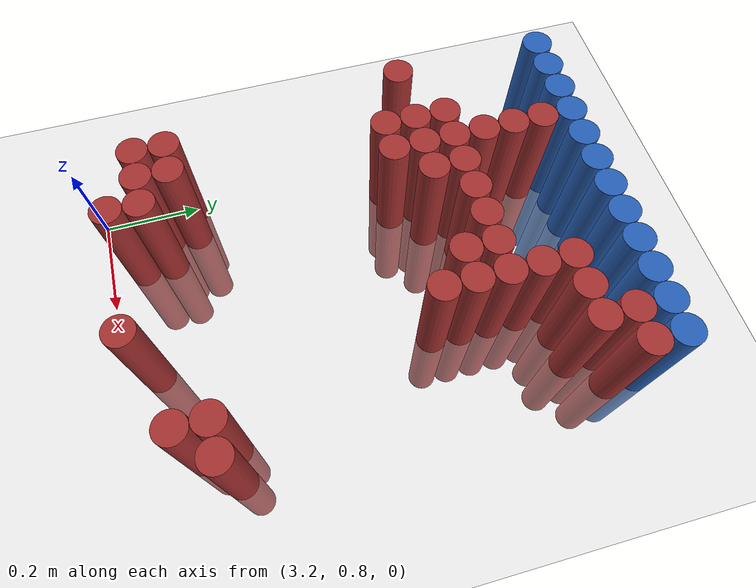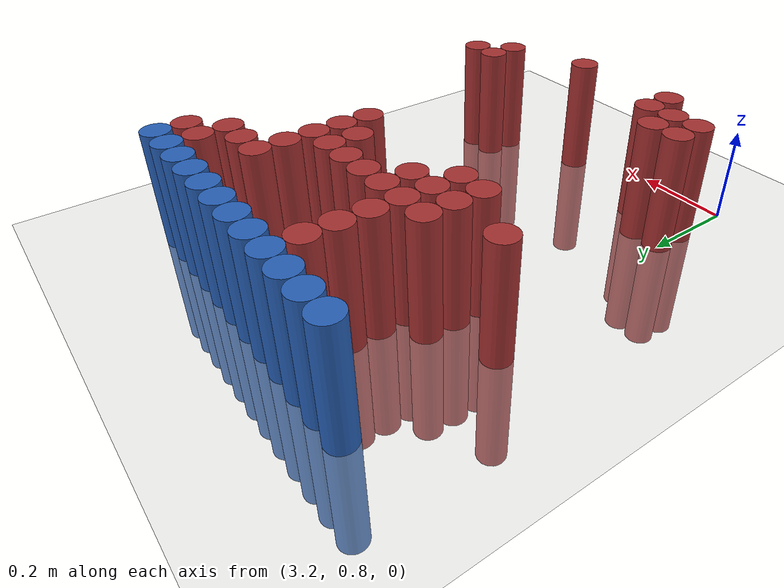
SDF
<sdf version="1.6">
 <world name="default">
  <model name="ground_plane">
   <static>1</static>
   <link name="link">
    <collision name="collision">
     <geometry><plane><normal>0 0 1</normal><size>100 100</size></plane></geometry>
     <surface><friction><ode><mu>100</mu><mu2>50</mu2></ode></friction></surface>
    </collision>
    <visual name="visual">
     <cast_shadows>0</cast_shadows>
     <geometry><plane><normal>0 0 1</normal><size>100 100</size></plane></geometry>
     <material>
      <script><uri>file://media/materials/scripts/gazebo.material</uri><name>Gazebo/Grey</name></script>
     </material>
    </visual>
   </link>
  </model>
  <model name="unit_cylinder_113">
   <static>1</static>
   <pose>3.150000 1.770000 0.000000 0.000000 0.000000 0.000000</pose>
   <link name="link">
    <inertial>
     <mass>1</mass>
     <inertia><ixx>0.145833</ixx><ixy>0</ixy><ixz>0</ixz><iyy>0.145833</iyy><iyz>0</iyz><izz>0.125</izz></inertia>
    </inertial>
    <collision name="collision">
     <geometry><cylinder><radius>0.030000</radius><length>0.5</length></cylinder></geometry>
    </collision>
    <visual name="visual">
     <geometry><cylinder><radius>0.030000</radius><length>0.5</length></cylinder></geometry>
     <material>
      <ambient>0.152000 0.379000 0.720000 1</ambient>
      <diffuse>0.152000 0.379000 0.720000 1</diffuse>
     </material>
     <material>
      <script><name>Gazebo/Grey</name><uri>file://media/materials/scripts/gazebo.material</uri></script>
     </material>
    </visual>
   </link>
  </model>
  <model name="unit_cylinder_114">
   <static>1</static>
   <pose>3.210000 1.770000 0.000000 0.000000 0.000000 0.000000</pose>
   <link name="link">
    <inertial>
     <mass>1</mass>
     <inertia><ixx>0.145833</ixx><ixy>0</ixy><ixz>0</ixz><iyy>0.145833</iyy><iyz>0</iyz><izz>0.125</izz></inertia>
    </inertial>
    <collision name="collision">
     <geometry><cylinder><radius>0.030000</radius><length>0.5</length></cylinder></geometry>
    </collision>
    <visual name="visual">
     <geometry><cylinder><radius>0.030000</radius><length>0.5</length></cylinder></geometry>
     <material>
      <ambient>0.152000 0.379000 0.720000 1</ambient>
      <diffuse>0.152000 0.379000 0.720000 1</diffuse>
     </material>
     <material>
      <script><name>Gazebo/Grey</name><uri>file://media/materials/scripts/gazebo.material</uri></script>
     </material>
    </visual>
   </link>
  </model>
  <model name="unit_cylinder_115">
   <static>1</static>
   <pose>3.270000 1.770000 0.000000 0.000000 0.000000 0.000000</pose>
   <link name="link">
    <inertial>
     <mass>1</mass>
     <inertia><ixx>0.145833</ixx><ixy>0</ixy><ixz>0</ixz><iyy>0.145833</iyy><iyz>0</iyz><izz>0.125</izz></inertia>
    </inertial>
    <collision name="collision">
     <geometry><cylinder><radius>0.030000</radius><length>0.5</length></cylinder></geometry>
    </collision>
    <visual name="visual">
     <geometry><cylinder><radius>0.030000</radius><length>0.5</length></cylinder></geometry>
     <material>
      <ambient>0.152000 0.379000 0.720000 1</ambient>
      <diffuse>0.152000 0.379000 0.720000 1</diffuse>
     </material>
     <material>
      <script><name>Gazebo/Grey</name><uri>file://media/materials/scripts/gazebo.material</uri></script>
     </material>
    </visual>
   </link>
  </model>
  <model name="unit_cylinder_116">
   <static>1</static>
   <pose>3.330000 1.770000 0.000000 0.000000 0.000000 0.000000</pose>
   <link name="link">
    <inertial>
     <mass>1</mass>
     <inertia><ixx>0.145833</ixx><ixy>0</ixy><ixz>0</ixz><iyy>0.145833</iyy><iyz>0</iyz><izz>0.125</izz></inertia>
    </inertial>
    <collision name="collision">
     <geometry><cylinder><radius>0.030000</radius><length>0.5</length></cylinder></geometry>
    </collision>
    <visual name="visual">
     <geometry><cylinder><radius>0.030000</radius><length>0.5</length></cylinder></geometry>
     <material>
      <ambient>0.152000 0.379000 0.720000 1</ambient>
      <diffuse>0.152000 0.379000 0.720000 1</diffuse>
     </material>
     <material>
      <script><name>Gazebo/Grey</name><uri>file://media/materials/scripts/gazebo.material</uri></script>
     </material>
    </visual>
   </link>
  </model>
  <model name="unit_cylinder_117">
   <static>1</static>
   <pose>3.390000 1.770000 0.000000 0.000000 0.000000 0.000000</pose>
   <link name="link">
    <inertial>
     <mass>1</mass>
     <inertia><ixx>0.145833</ixx><ixy>0</ixy><ixz>0</ixz><iyy>0.145833</iyy><iyz>0</iyz><izz>0.125</izz></inertia>
    </inertial>
    <collision name="collision">
     <geometry><cylinder><radius>0.030000</radius><length>0.5</length></cylinder></geometry>
    </collision>
    <visual name="visual">
     <geometry><cylinder><radius>0.030000</radius><length>0.5</length></cylinder></geometry>
     <material>
      <ambient>0.152000 0.379000 0.720000 1</ambient>
      <diffuse>0.152000 0.379000 0.720000 1</diffuse>
     </material>
     <material>
      <script><name>Gazebo/Grey</name><uri>file://media/materials/scripts/gazebo.material</uri></script>
     </material>
    </visual>
   </link>
  </model>
  <model name="unit_cylinder_118">
   <static>1</static>
   <pose>3.450000 1.770000 0.000000 0.000000 0.000000 0.000000</pose>
   <link name="link">
    <inertial>
     <mass>1</mass>
     <inertia><ixx>0.145833</ixx><ixy>0</ixy><ixz>0</ixz><iyy>0.145833</iyy><iyz>0</iyz><izz>0.125</izz></inertia>
    </inertial>
    <collision name="collision">
     <geometry><cylinder><radius>0.030000</radius><length>0.5</length></cylinder></geometry>
    </collision>
    <visual name="visual">
     <geometry><cylinder><radius>0.030000</radius><length>0.5</length></cylinder></geometry>
     <material>
      <ambient>0.152000 0.379000 0.720000 1</ambient>
      <diffuse>0.152000 0.379000 0.720000 1</diffuse>
     </material>
     <material>
      <script><name>Gazebo/Grey</name><uri>file://media/materials/scripts/gazebo.material</uri></script>
     </material>
    </visual>
   </link>
  </model>
  <model name="unit_cylinder_119">
   <static>1</static>
   <pose>3.510000 1.770000 0.000000 0.000000 0.000000 0.000000</pose>
   <link name="link">
    <inertial>
     <mass>1</mass>
     <inertia><ixx>0.145833</ixx><ixy>0</ixy><ixz>0</ixz><iyy>0.145833</iyy><iyz>0</iyz><izz>0.125</izz></inertia>
    </inertial>
    <collision name="collision">
     <geometry><cylinder><radius>0.030000</radius><length>0.5</length></cylinder></geometry>
    </collision>
    <visual name="visual">
     <geometry><cylinder><radius>0.030000</radius><length>0.5</length></cylinder></geometry>
     <material>
      <ambient>0.152000 0.379000 0.720000 1</ambient>
      <diffuse>0.152000 0.379000 0.720000 1</diffuse>
     </material>
     <material>
      <script><name>Gazebo/Grey</name><uri>file://media/materials/scripts/gazebo.material</uri></script>
     </material>
    </visual>
   </link>
  </model>
  <model name="unit_cylinder_120">
   <static>1</static>
   <pose>3.570000 1.770000 0.000000 0.000000 0.000000 0.000000</pose>
   <link name="link">
    <inertial>
     <mass>1</mass>
     <inertia><ixx>0.145833</ixx><ixy>0</ixy><ixz>0</ixz><iyy>0.145833</iyy><iyz>0</iyz><izz>0.125</izz></inertia>
    </inertial>
    <collision name="collision">
     <geometry><cylinder><radius>0.030000</radius><length>0.5</length></cylinder></geometry>
    </collision>
    <visual name="visual">
     <geometry><cylinder><radius>0.030000</radius><length>0.5</length></cylinder></geometry>
     <material>
      <ambient>0.152000 0.379000 0.720000 1</ambient>
      <diffuse>0.152000 0.379000 0.720000 1</diffuse>
     </material>
     <material>
      <script><name>Gazebo/Grey</name><uri>file://media/materials/scripts/gazebo.material</uri></script>
     </material>
    </visual>
   </link>
  </model>
  <model name="unit_cylinder_121">
   <static>1</static>
   <pose>3.630000 1.770000 0.000000 0.000000 0.000000 0.000000</pose>
   <link name="link">
    <inertial>
     <mass>1</mass>
     <inertia><ixx>0.145833</ixx><ixy>0</ixy><ixz>0</ixz><iyy>0.145833</iyy><iyz>0</iyz><izz>0.125</izz></inertia>
    </inertial>
    <collision name="collision">
     <geometry><cylinder><radius>0.030000</radius><length>0.5</length></cylinder></geometry>
    </collision>
    <visual name="visual">
     <geometry><cylinder><radius>0.030000</radius><length>0.5</length></cylinder></geometry>
     <material>
      <ambient>0.152000 0.379000 0.720000 1</ambient>
      <diffuse>0.152000 0.379000 0.720000 1</diffuse>
     </material>
     <material>
      <script><name>Gazebo/Grey</name><uri>file://media/materials/scripts/gazebo.material</uri></script>
     </material>
    </visual>
   </link>
  </model>
  <model name="unit_cylinder_122">
   <static>1</static>
   <pose>3.690000 1.770000 0.000000 0.000000 0.000000 0.000000</pose>
   <link name="link">
    <inertial>
     <mass>1</mass>
     <inertia><ixx>0.145833</ixx><ixy>0</ixy><ixz>0</ixz><iyy>0.145833</iyy><iyz>0</iyz><izz>0.125</izz></inertia>
    </inertial>
    <collision name="collision">
     <geometry><cylinder><radius>0.030000</radius><length>0.5</length></cylinder></geometry>
    </collision>
    <visual name="visual">
     <geometry><cylinder><radius>0.030000</radius><length>0.5</length></cylinder></geometry>
     <material>
      <ambient>0.152000 0.379000 0.720000 1</ambient>
      <diffuse>0.152000 0.379000 0.720000 1</diffuse>
     </material>
     <material>
      <script><name>Gazebo/Grey</name><uri>file://media/materials/scripts/gazebo.material</uri></script>
     </material>
    </visual>
   </link>
  </model>
  <model name="unit_cylinder_123">
   <static>1</static>
   <pose>3.750000 1.770000 0.000000 0.000000 0.000000 0.000000</pose>
   <link name="link">
    <inertial>
     <mass>1</mass>
     <inertia><ixx>0.145833</ixx><ixy>0</ixy><ixz>0</ixz><iyy>0.145833</iyy><iyz>0</iyz><izz>0.125</izz></inertia>
    </inertial>
    <collision name="collision">
     <geometry><cylinder><radius>0.030000</radius><length>0.5</length></cylinder></geometry>
    </collision>
    <visual name="visual">
     <geometry><cylinder><radius>0.030000</radius><length>0.5</length></cylinder></geometry>
     <material>
      <ambient>0.152000 0.379000 0.720000 1</ambient>
      <diffuse>0.152000 0.379000 0.720000 1</diffuse>
     </material>
     <material>
      <script><name>Gazebo/Grey</name><uri>file://media/materials/scripts/gazebo.material</uri></script>
     </material>
    </visual>
   </link>
  </model>
  <model name="unit_cylinder_124">
   <static>1</static>
   <pose>3.810000 1.770000 0.000000 0.000000 0.000000 0.000000</pose>
   <link name="link">
    <inertial>
     <mass>1</mass>
     <inertia><ixx>0.145833</ixx><ixy>0</ixy><ixz>0</ixz><iyy>0.145833</iyy><iyz>0</iyz><izz>0.125</izz></inertia>
    </inertial>
    <collision name="collision">
     <geometry><cylinder><radius>0.030000</radius><length>0.5</length></cylinder></geometry>
    </collision>
    <visual name="visual">
     <geometry><cylinder><radius>0.030000</radius><length>0.5</length></cylinder></geometry>
     <material>
      <ambient>0.152000 0.379000 0.720000 1</ambient>
      <diffuse>0.152000 0.379000 0.720000 1</diffuse>
     </material>
     <material>
      <script><name>Gazebo/Grey</name><uri>file://media/materials/scripts/gazebo.material</uri></script>
     </material>
    </visual>
   </link>
  </model>
  <model name="unit_cylinder_133">
   <static>1</static>
   <pose>3.330000 1.710000 0.000000 0.000000 0.000000 0.000000</pose>
   <link name="link">
    <inertial>
     <mass>1</mass>
     <inertia><ixx>0.145833</ixx><ixy>0</ixy><ixz>0</ixz><iyy>0.145833</iyy><iyz>0</iyz><izz>0.125</izz></inertia>
    </inertial>
    <collision name="collision">
     <geometry><cylinder><radius>0.030000</radius><length>0.5</length></cylinder></geometry>
    </collision>
    <visual name="visual">
     <geometry><cylinder><radius>0.030000</radius><length>0.5</length></cylinder></geometry>
     <material>
      <ambient>0.648000 0.192000 0.192000 1</ambient>
      <diffuse>0.648000 0.192000 0.192000 1</diffuse>
     </material>
     <material>
      <script><name>Gazebo/Grey</name><uri>file://media/materials/scripts/gazebo.material</uri></script>
     </material>
    </visual>
   </link>
  </model>
  <model name="unit_cylinder_134">
   <static>1</static>
   <pose>3.750000 1.710000 0.000000 0.000000 0.000000 0.000000</pose>
   <link name="link">
    <inertial>
     <mass>1</mass>
     <inertia><ixx>0.145833</ixx><ixy>0</ixy><ixz>0</ixz><iyy>0.145833</iyy><iyz>0</iyz><izz>0.125</izz></inertia>
    </inertial>
    <collision name="collision">
     <geometry><cylinder><radius>0.030000</radius><length>0.5</length></cylinder></geometry>
    </collision>
    <visual name="visual">
     <geometry><cylinder><radius>0.030000</radius><length>0.5</length></cylinder></geometry>
     <material>
      <ambient>0.648000 0.192000 0.192000 1</ambient>
      <diffuse>0.648000 0.192000 0.192000 1</diffuse>
     </material>
     <material>
      <script><name>Gazebo/Grey</name><uri>file://media/materials/scripts/gazebo.material</uri></script>
     </material>
    </visual>
   </link>
  </model>
  <model name="unit_cylinder_135">
   <static>1</static>
   <pose>3.810000 1.710000 0.000000 0.000000 0.000000 0.000000</pose>
   <link name="link">
    <inertial>
     <mass>1</mass>
     <inertia><ixx>0.145833</ixx><ixy>0</ixy><ixz>0</ixz><iyy>0.145833</iyy><iyz>0</iyz><izz>0.125</izz></inertia>
    </inertial>
    <collision name="collision">
     <geometry><cylinder><radius>0.030000</radius><length>0.5</length></cylinder></geometry>
    </collision>
    <visual name="visual">
     <geometry><cylinder><radius>0.030000</radius><length>0.5</length></cylinder></geometry>
     <material>
      <ambient>0.648000 0.192000 0.192000 1</ambient>
      <diffuse>0.648000 0.192000 0.192000 1</diffuse>
     </material>
     <material>
      <script><name>Gazebo/Grey</name><uri>file://media/materials/scripts/gazebo.material</uri></script>
     </material>
    </visual>
   </link>
  </model>
  <model name="unit_cylinder_141">
   <static>1</static>
   <pose>3.330000 1.650000 0.000000 0.000000 0.000000 0.000000</pose>
   <link name="link">
    <inertial>
     <mass>1</mass>
     <inertia><ixx>0.145833</ixx><ixy>0</ixy><ixz>0</ixz><iyy>0.145833</iyy><iyz>0</iyz><izz>0.125</izz></inertia>
    </inertial>
    <collision name="collision">
     <geometry><cylinder><radius>0.030000</radius><length>0.5</length></cylinder></geometry>
    </collision>
    <visual name="visual">
     <geometry><cylinder><radius>0.030000</radius><length>0.5</length></cylinder></geometry>
     <material>
      <ambient>0.648000 0.192000 0.192000 1</ambient>
      <diffuse>0.648000 0.192000 0.192000 1</diffuse>
     </material>
     <material>
      <script><name>Gazebo/Grey</name><uri>file://media/materials/scripts/gazebo.material</uri></script>
     </material>
    </visual>
   </link>
  </model>
  <model name="unit_cylinder_142">
   <static>1</static>
   <pose>3.630000 1.650000 0.000000 0.000000 0.000000 0.000000</pose>
   <link name="link">
    <inertial>
     <mass>1</mass>
     <inertia><ixx>0.145833</ixx><ixy>0</ixy><ixz>0</ixz><iyy>0.145833</iyy><iyz>0</iyz><izz>0.125</izz></inertia>
    </inertial>
    <collision name="collision">
     <geometry><cylinder><radius>0.030000</radius><length>0.5</length></cylinder></geometry>
    </collision>
    <visual name="visual">
     <geometry><cylinder><radius>0.030000</radius><length>0.5</length></cylinder></geometry>
     <material>
      <ambient>0.648000 0.192000 0.192000 1</ambient>
      <diffuse>0.648000 0.192000 0.192000 1</diffuse>
     </material>
     <material>
      <script><name>Gazebo/Grey</name><uri>file://media/materials/scripts/gazebo.material</uri></script>
     </material>
    </visual>
   </link>
  </model>
  <model name="unit_cylinder_143">
   <static>1</static>
   <pose>3.690000 1.650000 0.000000 0.000000 0.000000 0.000000</pose>
   <link name="link">
    <inertial>
     <mass>1</mass>
     <inertia><ixx>0.145833</ixx><ixy>0</ixy><ixz>0</ixz><iyy>0.145833</iyy><iyz>0</iyz><izz>0.125</izz></inertia>
    </inertial>
    <collision name="collision">
     <geometry><cylinder><radius>0.030000</radius><length>0.5</length></cylinder></geometry>
    </collision>
    <visual name="visual">
     <geometry><cylinder><radius>0.030000</radius><length>0.5</length></cylinder></geometry>
     <material>
      <ambient>0.648000 0.192000 0.192000 1</ambient>
      <diffuse>0.648000 0.192000 0.192000 1</diffuse>
     </material>
     <material>
      <script><name>Gazebo/Grey</name><uri>file://media/materials/scripts/gazebo.material</uri></script>
     </material>
    </visual>
   </link>
  </model>
  <model name="unit_cylinder_144">
   <static>1</static>
   <pose>3.750000 1.650000 0.000000 0.000000 0.000000 0.000000</pose>
   <link name="link">
    <inertial>
     <mass>1</mass>
     <inertia><ixx>0.145833</ixx><ixy>0</ixy><ixz>0</ixz><iyy>0.145833</iyy><iyz>0</iyz><izz>0.125</izz></inertia>
    </inertial>
    <collision name="collision">
     <geometry><cylinder><radius>0.030000</radius><length>0.5</length></cylinder></geometry>
    </collision>
    <visual name="visual">
     <geometry><cylinder><radius>0.030000</radius><length>0.5</length></cylinder></geometry>
     <material>
      <ambient>0.648000 0.192000 0.192000 1</ambient>
      <diffuse>0.648000 0.192000 0.192000 1</diffuse>
     </material>
     <material>
      <script><name>Gazebo/Grey</name><uri>file://media/materials/scripts/gazebo.material</uri></script>
     </material>
    </visual>
   </link>
  </model>
  <model name="unit_cylinder_148">
   <static>1</static>
   <pose>3.330000 1.590000 0.000000 0.000000 0.000000 0.000000</pose>
   <link name="link">
    <inertial>
     <mass>1</mass>
     <inertia><ixx>0.145833</ixx><ixy>0</ixy><ixz>0</ixz><iyy>0.145833</iyy><iyz>0</iyz><izz>0.125</izz></inertia>
    </inertial>
    <collision name="collision">
     <geometry><cylinder><radius>0.030000</radius><length>0.5</length></cylinder></geometry>
    </collision>
    <visual name="visual">
     <geometry><cylinder><radius>0.030000</radius><length>0.5</length></cylinder></geometry>
     <material>
      <ambient>0.648000 0.192000 0.192000 1</ambient>
      <diffuse>0.648000 0.192000 0.192000 1</diffuse>
     </material>
     <material>
      <script><name>Gazebo/Grey</name><uri>file://media/materials/scripts/gazebo.material</uri></script>
     </material>
    </visual>
   </link>
  </model>
  <model name="unit_cylinder_149">
   <static>1</static>
   <pose>3.630000 1.590000 0.000000 0.000000 0.000000 0.000000</pose>
   <link name="link">
    <inertial>
     <mass>1</mass>
     <inertia><ixx>0.145833</ixx><ixy>0</ixy><ixz>0</ixz><iyy>0.145833</iyy><iyz>0</iyz><izz>0.125</izz></inertia>
    </inertial>
    <collision name="collision">
     <geometry><cylinder><radius>0.030000</radius><length>0.5</length></cylinder></geometry>
    </collision>
    <visual name="visual">
     <geometry><cylinder><radius>0.030000</radius><length>0.5</length></cylinder></geometry>
     <material>
      <ambient>0.648000 0.192000 0.192000 1</ambient>
      <diffuse>0.648000 0.192000 0.192000 1</diffuse>
     </material>
     <material>
      <script><name>Gazebo/Grey</name><uri>file://media/materials/scripts/gazebo.material</uri></script>
     </material>
    </visual>
   </link>
  </model>
  <model name="unit_cylinder_155">
   <static>1</static>
   <pose>3.270000 1.530000 0.000000 0.000000 0.000000 0.000000</pose>
   <link name="link">
    <inertial>
     <mass>1</mass>
     <inertia><ixx>0.145833</ixx><ixy>0</ixy><ixz>0</ixz><iyy>0.145833</iyy><iyz>0</iyz><izz>0.125</izz></inertia>
    </inertial>
    <collision name="collision">
     <geometry><cylinder><radius>0.030000</radius><length>0.5</length></cylinder></geometry>
    </collision>
    <visual name="visual">
     <geometry><cylinder><radius>0.030000</radius><length>0.5</length></cylinder></geometry>
     <material>
      <ambient>0.648000 0.192000 0.192000 1</ambient>
      <diffuse>0.648000 0.192000 0.192000 1</diffuse>
     </material>
     <material>
      <script><name>Gazebo/Grey</name><uri>file://media/materials/scripts/gazebo.material</uri></script>
     </material>
    </visual>
   </link>
  </model>
  <model name="unit_cylinder_156">
   <static>1</static>
   <pose>3.330000 1.530000 0.000000 0.000000 0.000000 0.000000</pose>
   <link name="link">
    <inertial>
     <mass>1</mass>
     <inertia><ixx>0.145833</ixx><ixy>0</ixy><ixz>0</ixz><iyy>0.145833</iyy><iyz>0</iyz><izz>0.125</izz></inertia>
    </inertial>
    <collision name="collision">
     <geometry><cylinder><radius>0.030000</radius><length>0.5</length></cylinder></geometry>
    </collision>
    <visual name="visual">
     <geometry><cylinder><radius>0.030000</radius><length>0.5</length></cylinder></geometry>
     <material>
      <ambient>0.648000 0.192000 0.192000 1</ambient>
      <diffuse>0.648000 0.192000 0.192000 1</diffuse>
     </material>
     <material>
      <script><name>Gazebo/Grey</name><uri>file://media/materials/scripts/gazebo.material</uri></script>
     </material>
    </visual>
   </link>
  </model>
  <model name="unit_cylinder_157">
   <static>1</static>
   <pose>3.390000 1.530000 0.000000 0.000000 0.000000 0.000000</pose>
   <link name="link">
    <inertial>
     <mass>1</mass>
     <inertia><ixx>0.145833</ixx><ixy>0</ixy><ixz>0</ixz><iyy>0.145833</iyy><iyz>0</iyz><izz>0.125</izz></inertia>
    </inertial>
    <collision name="collision">
     <geometry><cylinder><radius>0.030000</radius><length>0.5</length></cylinder></geometry>
    </collision>
    <visual name="visual">
     <geometry><cylinder><radius>0.030000</radius><length>0.5</length></cylinder></geometry>
     <material>
      <ambient>0.648000 0.192000 0.192000 1</ambient>
      <diffuse>0.648000 0.192000 0.192000 1</diffuse>
     </material>
     <material>
      <script><name>Gazebo/Grey</name><uri>file://media/materials/scripts/gazebo.material</uri></script>
     </material>
    </visual>
   </link>
  </model>
  <model name="unit_cylinder_158">
   <static>1</static>
   <pose>3.450000 1.530000 0.000000 0.000000 0.000000 0.000000</pose>
   <link name="link">
    <inertial>
     <mass>1</mass>
     <inertia><ixx>0.145833</ixx><ixy>0</ixy><ixz>0</ixz><iyy>0.145833</iyy><iyz>0</iyz><izz>0.125</izz></inertia>
    </inertial>
    <collision name="collision">
     <geometry><cylinder><radius>0.030000</radius><length>0.5</length></cylinder></geometry>
    </collision>
    <visual name="visual">
     <geometry><cylinder><radius>0.030000</radius><length>0.5</length></cylinder></geometry>
     <material>
      <ambient>0.648000 0.192000 0.192000 1</ambient>
      <diffuse>0.648000 0.192000 0.192000 1</diffuse>
     </material>
     <material>
      <script><name>Gazebo/Grey</name><uri>file://media/materials/scripts/gazebo.material</uri></script>
     </material>
    </visual>
   </link>
  </model>
  <model name="unit_cylinder_159">
   <static>1</static>
   <pose>3.510000 1.530000 0.000000 0.000000 0.000000 0.000000</pose>
   <link name="link">
    <inertial>
     <mass>1</mass>
     <inertia><ixx>0.145833</ixx><ixy>0</ixy><ixz>0</ixz><iyy>0.145833</iyy><iyz>0</iyz><izz>0.125</izz></inertia>
    </inertial>
    <collision name="collision">
     <geometry><cylinder><radius>0.030000</radius><length>0.5</length></cylinder></geometry>
    </collision>
    <visual name="visual">
     <geometry><cylinder><radius>0.030000</radius><length>0.5</length></cylinder></geometry>
     <material>
      <ambient>0.648000 0.192000 0.192000 1</ambient>
      <diffuse>0.648000 0.192000 0.192000 1</diffuse>
     </material>
     <material>
      <script><name>Gazebo/Grey</name><uri>file://media/materials/scripts/gazebo.material</uri></script>
     </material>
    </visual>
   </link>
  </model>
  <model name="unit_cylinder_160">
   <static>1</static>
   <pose>3.570000 1.530000 0.000000 0.000000 0.000000 0.000000</pose>
   <link name="link">
    <inertial>
     <mass>1</mass>
     <inertia><ixx>0.145833</ixx><ixy>0</ixy><ixz>0</ixz><iyy>0.145833</iyy><iyz>0</iyz><izz>0.125</izz></inertia>
    </inertial>
    <collision name="collision">
     <geometry><cylinder><radius>0.030000</radius><length>0.5</length></cylinder></geometry>
    </collision>
    <visual name="visual">
     <geometry><cylinder><radius>0.030000</radius><length>0.5</length></cylinder></geometry>
     <material>
      <ambient>0.648000 0.192000 0.192000 1</ambient>
      <diffuse>0.648000 0.192000 0.192000 1</diffuse>
     </material>
     <material>
      <script><name>Gazebo/Grey</name><uri>file://media/materials/scripts/gazebo.material</uri></script>
     </material>
    </visual>
   </link>
  </model>
  <model name="unit_cylinder_161">
   <static>1</static>
   <pose>3.630000 1.530000 0.000000 0.000000 0.000000 0.000000</pose>
   <link name="link">
    <inertial>
     <mass>1</mass>
     <inertia><ixx>0.145833</ixx><ixy>0</ixy><ixz>0</ixz><iyy>0.145833</iyy><iyz>0</iyz><izz>0.125</izz></inertia>
    </inertial>
    <collision name="collision">
     <geometry><cylinder><radius>0.030000</radius><length>0.5</length></cylinder></geometry>
    </collision>
    <visual name="visual">
     <geometry><cylinder><radius>0.030000</radius><length>0.5</length></cylinder></geometry>
     <material>
      <ambient>0.648000 0.192000 0.192000 1</ambient>
      <diffuse>0.648000 0.192000 0.192000 1</diffuse>
     </material>
     <material>
      <script><name>Gazebo/Grey</name><uri>file://media/materials/scripts/gazebo.material</uri></script>
     </material>
    </visual>
   </link>
  </model>
  <model name="unit_cylinder_169">
   <static>1</static>
   <pose>3.150000 1.470000 0.000000 0.000000 0.000000 0.000000</pose>
   <link name="link">
    <inertial>
     <mass>1</mass>
     <inertia><ixx>0.145833</ixx><ixy>0</ixy><ixz>0</ixz><iyy>0.145833</iyy><iyz>0</iyz><izz>0.125</izz></inertia>
    </inertial>
    <collision name="collision">
     <geometry><cylinder><radius>0.030000</radius><length>0.5</length></cylinder></geometry>
    </collision>
    <visual name="visual">
     <geometry><cylinder><radius>0.030000</radius><length>0.5</length></cylinder></geometry>
     <material>
      <ambient>0.648000 0.192000 0.192000 1</ambient>
      <diffuse>0.648000 0.192000 0.192000 1</diffuse>
     </material>
     <material>
      <script><name>Gazebo/Grey</name><uri>file://media/materials/scripts/gazebo.material</uri></script>
     </material>
    </visual>
   </link>
  </model>
  <model name="unit_cylinder_170">
   <static>1</static>
   <pose>3.270000 1.470000 0.000000 0.000000 0.000000 0.000000</pose>
   <link name="link">
    <inertial>
     <mass>1</mass>
     <inertia><ixx>0.145833</ixx><ixy>0</ixy><ixz>0</ixz><iyy>0.145833</iyy><iyz>0</iyz><izz>0.125</izz></inertia>
    </inertial>
    <collision name="collision">
     <geometry><cylinder><radius>0.030000</radius><length>0.5</length></cylinder></geometry>
    </collision>
    <visual name="visual">
     <geometry><cylinder><radius>0.030000</radius><length>0.5</length></cylinder></geometry>
     <material>
      <ambient>0.648000 0.192000 0.192000 1</ambient>
      <diffuse>0.648000 0.192000 0.192000 1</diffuse>
     </material>
     <material>
      <script><name>Gazebo/Grey</name><uri>file://media/materials/scripts/gazebo.material</uri></script>
     </material>
    </visual>
   </link>
  </model>
  <model name="unit_cylinder_171">
   <static>1</static>
   <pose>3.330000 1.470000 0.000000 0.000000 0.000000 0.000000</pose>
   <link name="link">
    <inertial>
     <mass>1</mass>
     <inertia><ixx>0.145833</ixx><ixy>0</ixy><ixz>0</ixz><iyy>0.145833</iyy><iyz>0</iyz><izz>0.125</izz></inertia>
    </inertial>
    <collision name="collision">
     <geometry><cylinder><radius>0.030000</radius><length>0.5</length></cylinder></geometry>
    </collision>
    <visual name="visual">
     <geometry><cylinder><radius>0.030000</radius><length>0.5</length></cylinder></geometry>
     <material>
      <ambient>0.648000 0.192000 0.192000 1</ambient>
      <diffuse>0.648000 0.192000 0.192000 1</diffuse>
     </material>
     <material>
      <script><name>Gazebo/Grey</name><uri>file://media/materials/scripts/gazebo.material</uri></script>
     </material>
    </visual>
   </link>
  </model>
  <model name="unit_cylinder_172">
   <static>1</static>
   <pose>3.390000 1.470000 0.000000 0.000000 0.000000 0.000000</pose>
   <link name="link">
    <inertial>
     <mass>1</mass>
     <inertia><ixx>0.145833</ixx><ixy>0</ixy><ixz>0</ixz><iyy>0.145833</iyy><iyz>0</iyz><izz>0.125</izz></inertia>
    </inertial>
    <collision name="collision">
     <geometry><cylinder><radius>0.030000</radius><length>0.5</length></cylinder></geometry>
    </collision>
    <visual name="visual">
     <geometry><cylinder><radius>0.030000</radius><length>0.5</length></cylinder></geometry>
     <material>
      <ambient>0.648000 0.192000 0.192000 1</ambient>
      <diffuse>0.648000 0.192000 0.192000 1</diffuse>
     </material>
     <material>
      <script><name>Gazebo/Grey</name><uri>file://media/materials/scripts/gazebo.material</uri></script>
     </material>
    </visual>
   </link>
  </model>
  <model name="unit_cylinder_173">
   <static>1</static>
   <pose>3.570000 1.470000 0.000000 0.000000 0.000000 0.000000</pose>
   <link name="link">
    <inertial>
     <mass>1</mass>
     <inertia><ixx>0.145833</ixx><ixy>0</ixy><ixz>0</ixz><iyy>0.145833</iyy><iyz>0</iyz><izz>0.125</izz></inertia>
    </inertial>
    <collision name="collision">
     <geometry><cylinder><radius>0.030000</radius><length>0.5</length></cylinder></geometry>
    </collision>
    <visual name="visual">
     <geometry><cylinder><radius>0.030000</radius><length>0.5</length></cylinder></geometry>
     <material>
      <ambient>0.648000 0.192000 0.192000 1</ambient>
      <diffuse>0.648000 0.192000 0.192000 1</diffuse>
     </material>
     <material>
      <script><name>Gazebo/Grey</name><uri>file://media/materials/scripts/gazebo.material</uri></script>
     </material>
    </visual>
   </link>
  </model>
  <model name="unit_cylinder_174">
   <static>1</static>
   <pose>3.630000 1.470000 0.000000 0.000000 0.000000 0.000000</pose>
   <link name="link">
    <inertial>
     <mass>1</mass>
     <inertia><ixx>0.145833</ixx><ixy>0</ixy><ixz>0</ixz><iyy>0.145833</iyy><iyz>0</iyz><izz>0.125</izz></inertia>
    </inertial>
    <collision name="collision">
     <geometry><cylinder><radius>0.030000</radius><length>0.5</length></cylinder></geometry>
    </collision>
    <visual name="visual">
     <geometry><cylinder><radius>0.030000</radius><length>0.5</length></cylinder></geometry>
     <material>
      <ambient>0.648000 0.192000 0.192000 1</ambient>
      <diffuse>0.648000 0.192000 0.192000 1</diffuse>
     </material>
     <material>
      <script><name>Gazebo/Grey</name><uri>file://media/materials/scripts/gazebo.material</uri></script>
     </material>
    </visual>
   </link>
  </model>
  <model name="unit_cylinder_185">
   <static>1</static>
   <pose>3.270000 1.410000 0.000000 0.000000 0.000000 0.000000</pose>
   <link name="link">
    <inertial>
     <mass>1</mass>
     <inertia><ixx>0.145833</ixx><ixy>0</ixy><ixz>0</ixz><iyy>0.145833</iyy><iyz>0</iyz><izz>0.125</izz></inertia>
    </inertial>
    <collision name="collision">
     <geometry><cylinder><radius>0.030000</radius><length>0.5</length></cylinder></geometry>
    </collision>
    <visual name="visual">
     <geometry><cylinder><radius>0.030000</radius><length>0.5</length></cylinder></geometry>
     <material>
      <ambient>0.648000 0.192000 0.192000 1</ambient>
      <diffuse>0.648000 0.192000 0.192000 1</diffuse>
     </material>
     <material>
      <script><name>Gazebo/Grey</name><uri>file://media/materials/scripts/gazebo.material</uri></script>
     </material>
    </visual>
   </link>
  </model>
  <model name="unit_cylinder_186">
   <static>1</static>
   <pose>3.330000 1.410000 0.000000 0.000000 0.000000 0.000000</pose>
   <link name="link">
    <inertial>
     <mass>1</mass>
     <inertia><ixx>0.145833</ixx><ixy>0</ixy><ixz>0</ixz><iyy>0.145833</iyy><iyz>0</iyz><izz>0.125</izz></inertia>
    </inertial>
    <collision name="collision">
     <geometry><cylinder><radius>0.030000</radius><length>0.5</length></cylinder></geometry>
    </collision>
    <visual name="visual">
     <geometry><cylinder><radius>0.030000</radius><length>0.5</length></cylinder></geometry>
     <material>
      <ambient>0.648000 0.192000 0.192000 1</ambient>
      <diffuse>0.648000 0.192000 0.192000 1</diffuse>
     </material>
     <material>
      <script><name>Gazebo/Grey</name><uri>file://media/materials/scripts/gazebo.material</uri></script>
     </material>
    </visual>
   </link>
  </model>
  <model name="unit_cylinder_187">
   <static>1</static>
   <pose>3.630000 1.410000 0.000000 0.000000 0.000000 0.000000</pose>
   <link name="link">
    <inertial>
     <mass>1</mass>
     <inertia><ixx>0.145833</ixx><ixy>0</ixy><ixz>0</ixz><iyy>0.145833</iyy><iyz>0</iyz><izz>0.125</izz></inertia>
    </inertial>
    <collision name="collision">
     <geometry><cylinder><radius>0.030000</radius><length>0.5</length></cylinder></geometry>
    </collision>
    <visual name="visual">
     <geometry><cylinder><radius>0.030000</radius><length>0.5</length></cylinder></geometry>
     <material>
      <ambient>0.648000 0.192000 0.192000 1</ambient>
      <diffuse>0.648000 0.192000 0.192000 1</diffuse>
     </material>
     <material>
      <script><name>Gazebo/Grey</name><uri>file://media/materials/scripts/gazebo.material</uri></script>
     </material>
    </visual>
   </link>
  </model>
  <model name="unit_cylinder_195">
   <static>1</static>
   <pose>3.210000 0.990000 0.000000 0.000000 0.000000 0.000000</pose>
   <link name="link">
    <inertial>
     <mass>1</mass>
     <inertia><ixx>0.145833</ixx><ixy>0</ixy><ixz>0</ixz><iyy>0.145833</iyy><iyz>0</iyz><izz>0.125</izz></inertia>
    </inertial>
    <collision name="collision">
     <geometry><cylinder><radius>0.030000</radius><length>0.5</length></cylinder></geometry>
    </collision>
    <visual name="visual">
     <geometry><cylinder><radius>0.030000</radius><length>0.5</length></cylinder></geometry>
     <material>
      <ambient>0.648000 0.192000 0.192000 1</ambient>
      <diffuse>0.648000 0.192000 0.192000 1</diffuse>
     </material>
     <material>
      <script><name>Gazebo/Grey</name><uri>file://media/materials/scripts/gazebo.material</uri></script>
     </material>
    </visual>
   </link>
  </model>
  <model name="unit_cylinder_196">
   <static>1</static>
   <pose>3.270000 0.990000 0.000000 0.000000 0.000000 0.000000</pose>
   <link name="link">
    <inertial>
     <mass>1</mass>
     <inertia><ixx>0.145833</ixx><ixy>0</ixy><ixz>0</ixz><iyy>0.145833</iyy><iyz>0</iyz><izz>0.125</izz></inertia>
    </inertial>
    <collision name="collision">
     <geometry><cylinder><radius>0.030000</radius><length>0.5</length></cylinder></geometry>
    </collision>
    <visual name="visual">
     <geometry><cylinder><radius>0.030000</radius><length>0.5</length></cylinder></geometry>
     <material>
      <ambient>0.648000 0.192000 0.192000 1</ambient>
      <diffuse>0.648000 0.192000 0.192000 1</diffuse>
     </material>
     <material>
      <script><name>Gazebo/Grey</name><uri>file://media/materials/scripts/gazebo.material</uri></script>
     </material>
    </visual>
   </link>
  </model>
  <model name="unit_cylinder_197">
   <static>1</static>
   <pose>3.750000 0.990000 0.000000 0.000000 0.000000 0.000000</pose>
   <link name="link">
    <inertial>
     <mass>1</mass>
     <inertia><ixx>0.145833</ixx><ixy>0</ixy><ixz>0</ixz><iyy>0.145833</iyy><iyz>0</iyz><izz>0.125</izz></inertia>
    </inertial>
    <collision name="collision">
     <geometry><cylinder><radius>0.030000</radius><length>0.5</length></cylinder></geometry>
    </collision>
    <visual name="visual">
     <geometry><cylinder><radius>0.030000</radius><length>0.5</length></cylinder></geometry>
     <material>
      <ambient>0.648000 0.192000 0.192000 1</ambient>
      <diffuse>0.648000 0.192000 0.192000 1</diffuse>
     </material>
     <material>
      <script><name>Gazebo/Grey</name><uri>file://media/materials/scripts/gazebo.material</uri></script>
     </material>
    </visual>
   </link>
  </model>
  <model name="unit_cylinder_198">
   <static>1</static>
   <pose>3.810000 0.990000 0.000000 0.000000 0.000000 0.000000</pose>
   <link name="link">
    <inertial>
     <mass>1</mass>
     <inertia><ixx>0.145833</ixx><ixy>0</ixy><ixz>0</ixz><iyy>0.145833</iyy><iyz>0</iyz><izz>0.125</izz></inertia>
    </inertial>
    <collision name="collision">
     <geometry><cylinder><radius>0.030000</radius><length>0.5</length></cylinder></geometry>
    </collision>
    <visual name="visual">
     <geometry><cylinder><radius>0.030000</radius><length>0.5</length></cylinder></geometry>
     <material>
      <ambient>0.648000 0.192000 0.192000 1</ambient>
      <diffuse>0.648000 0.192000 0.192000 1</diffuse>
     </material>
     <material>
      <script><name>Gazebo/Grey</name><uri>file://media/materials/scripts/gazebo.material</uri></script>
     </material>
    </visual>
   </link>
  </model>
  <model name="unit_cylinder_206">
   <static>1</static>
   <pose>3.210000 0.930000 0.000000 0.000000 0.000000 0.000000</pose>
   <link name="link">
    <inertial>
     <mass>1</mass>
     <inertia><ixx>0.145833</ixx><ixy>0</ixy><ixz>0</ixz><iyy>0.145833</iyy><iyz>0</iyz><izz>0.125</izz></inertia>
    </inertial>
    <collision name="collision">
     <geometry><cylinder><radius>0.030000</radius><length>0.5</length></cylinder></geometry>
    </collision>
    <visual name="visual">
     <geometry><cylinder><radius>0.030000</radius><length>0.5</length></cylinder></geometry>
     <material>
      <ambient>0.648000 0.192000 0.192000 1</ambient>
      <diffuse>0.648000 0.192000 0.192000 1</diffuse>
     </material>
     <material>
      <script><name>Gazebo/Grey</name><uri>file://media/materials/scripts/gazebo.material</uri></script>
     </material>
    </visual>
   </link>
  </model>
  <model name="unit_cylinder_207">
   <static>1</static>
   <pose>3.270000 0.930000 0.000000 0.000000 0.000000 0.000000</pose>
   <link name="link">
    <inertial>
     <mass>1</mass>
     <inertia><ixx>0.145833</ixx><ixy>0</ixy><ixz>0</ixz><iyy>0.145833</iyy><iyz>0</iyz><izz>0.125</izz></inertia>
    </inertial>
    <collision name="collision">
     <geometry><cylinder><radius>0.030000</radius><length>0.5</length></cylinder></geometry>
    </collision>
    <visual name="visual">
     <geometry><cylinder><radius>0.030000</radius><length>0.5</length></cylinder></geometry>
     <material>
      <ambient>0.648000 0.192000 0.192000 1</ambient>
      <diffuse>0.648000 0.192000 0.192000 1</diffuse>
     </material>
     <material>
      <script><name>Gazebo/Grey</name><uri>file://media/materials/scripts/gazebo.material</uri></script>
     </material>
    </visual>
   </link>
  </model>
  <model name="unit_cylinder_208">
   <static>1</static>
   <pose>3.330000 0.930000 0.000000 0.000000 0.000000 0.000000</pose>
   <link name="link">
    <inertial>
     <mass>1</mass>
     <inertia><ixx>0.145833</ixx><ixy>0</ixy><ixz>0</ixz><iyy>0.145833</iyy><iyz>0</iyz><izz>0.125</izz></inertia>
    </inertial>
    <collision name="collision">
     <geometry><cylinder><radius>0.030000</radius><length>0.5</length></cylinder></geometry>
    </collision>
    <visual name="visual">
     <geometry><cylinder><radius>0.030000</radius><length>0.5</length></cylinder></geometry>
     <material>
      <ambient>0.648000 0.192000 0.192000 1</ambient>
      <diffuse>0.648000 0.192000 0.192000 1</diffuse>
     </material>
     <material>
      <script><name>Gazebo/Grey</name><uri>file://media/materials/scripts/gazebo.material</uri></script>
     </material>
    </visual>
   </link>
  </model>
  <model name="unit_cylinder_209">
   <static>1</static>
   <pose>3.750000 0.930000 0.000000 0.000000 0.000000 0.000000</pose>
   <link name="link">
    <inertial>
     <mass>1</mass>
     <inertia><ixx>0.145833</ixx><ixy>0</ixy><ixz>0</ixz><iyy>0.145833</iyy><iyz>0</iyz><izz>0.125</izz></inertia>
    </inertial>
    <collision name="collision">
     <geometry><cylinder><radius>0.030000</radius><length>0.5</length></cylinder></geometry>
    </collision>
    <visual name="visual">
     <geometry><cylinder><radius>0.030000</radius><length>0.5</length></cylinder></geometry>
     <material>
      <ambient>0.648000 0.192000 0.192000 1</ambient>
      <diffuse>0.648000 0.192000 0.192000 1</diffuse>
     </material>
     <material>
      <script><name>Gazebo/Grey</name><uri>file://media/materials/scripts/gazebo.material</uri></script>
     </material>
    </visual>
   </link>
  </model>
  <model name="unit_cylinder_217">
   <static>1</static>
   <pose>3.330000 0.870000 0.000000 0.000000 0.000000 0.000000</pose>
   <link name="link">
    <inertial>
     <mass>1</mass>
     <inertia><ixx>0.145833</ixx><ixy>0</ixy><ixz>0</ixz><iyy>0.145833</iyy><iyz>0</iyz><izz>0.125</izz></inertia>
    </inertial>
    <collision name="collision">
     <geometry><cylinder><radius>0.030000</radius><length>0.5</length></cylinder></geometry>
    </collision>
    <visual name="visual">
     <geometry><cylinder><radius>0.030000</radius><length>0.5</length></cylinder></geometry>
     <material>
      <ambient>0.648000 0.192000 0.192000 1</ambient>
      <diffuse>0.648000 0.192000 0.192000 1</diffuse>
     </material>
     <material>
      <script><name>Gazebo/Grey</name><uri>file://media/materials/scripts/gazebo.material</uri></script>
     </material>
    </visual>
   </link>
  </model>
  <model name="unit_cylinder_218">
   <static>1</static>
   <pose>3.570000 0.870000 0.000000 0.000000 0.000000 0.000000</pose>
   <link name="link">
    <inertial>
     <mass>1</mass>
     <inertia><ixx>0.145833</ixx><ixy>0</ixy><ixz>0</ixz><iyy>0.145833</iyy><iyz>0</iyz><izz>0.125</izz></inertia>
    </inertial>
    <collision name="collision">
     <geometry><cylinder><radius>0.030000</radius><length>0.5</length></cylinder></geometry>
    </collision>
    <visual name="visual">
     <geometry><cylinder><radius>0.030000</radius><length>0.5</length></cylinder></geometry>
     <material>
      <ambient>0.648000 0.192000 0.192000 1</ambient>
      <diffuse>0.648000 0.192000 0.192000 1</diffuse>
     </material>
     <material>
      <script><name>Gazebo/Grey</name><uri>file://media/materials/scripts/gazebo.material</uri></script>
     </material>
    </visual>
   </link>
  </model>
 </world>
</sdf>
